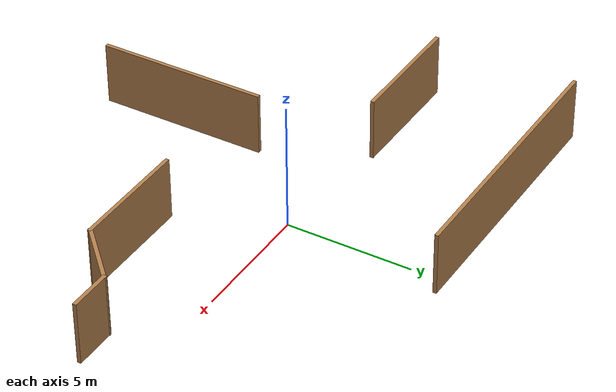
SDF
<?xml version='1.0'?>
<sdf version='1.6'>
  <model name='Adel'>
    <pose frame=''>-0.093957 -1.78062 0 0 -0 0</pose>
    <link name='Wall_0'>
      <collision name='Wall_0_Collision'>
        <geometry>
          <box>
            <size>6.75 0.15 2.5</size>
          </box>
        </geometry>
        <pose frame=''>0 0 1.25 0 -0 0</pose>
      </collision>
      <visual name='Wall_0_Visual'>
        <pose frame=''>0 0 1.25 0 -0 0</pose>
        <geometry>
          <box>
            <size>6.75 0.15 2.5</size>
          </box>
        </geometry>
        <material>
          <script>
            <uri>file://media/materials/scripts/gazebo.material</uri>
            <name>Gazebo/Wood</name>
          </script>
          <ambient>1 1 1 1</ambient>
        </material>
        <meta>
          <layer>0</layer>
        </meta>
      </visual>
      <pose frame=''>-3.17717 -4.79271 0 0 -0 -1.5708</pose>
    </link>
    <link name='Wall_17'>
      <collision name='Wall_17_Collision'>
        <geometry>
          <box>
            <size>5 0.15 2.5</size>
          </box>
        </geometry>
        <pose frame=''>0 0 1.25 0 -0 0</pose>
      </collision>
      <visual name='Wall_17_Visual'>
        <pose frame=''>0 0 1.25 0 -0 0</pose>
        <geometry>
          <box>
            <size>5 0.15 2.5</size>
          </box>
        </geometry>
        <material>
          <script>
            <uri>file://media/materials/scripts/gazebo.material</uri>
            <name>Gazebo/Wood</name>
          </script>
          <ambient>1 1 1 1</ambient>
        </material>
        <meta>
          <layer>0</layer>
        </meta>
      </visual>
      <pose frame=''>-7.45445 2.33014 0 0 -0 0</pose>
    </link>
    <link name='Wall_20'>
      <collision name='Wall_20_Collision'>
        <geometry>
          <box>
            <size>10.75 0.15 2.5</size>
          </box>
        </geometry>
        <pose frame=''>0 0 1.25 0 -0 0</pose>
      </collision>
      <visual name='Wall_20_Visual'>
        <pose frame=''>0 0 1.25 0 -0 0</pose>
        <geometry>
          <box>
            <size>10.75 0.15 2.5</size>
          </box>
        </geometry>
        <material>
          <script>
            <uri>file://media/materials/scripts/gazebo.material</uri>
            <name>Gazebo/Wood</name>
          </script>
          <ambient>1 1 1 1</ambient>
        </material>
        <meta>
          <layer>0</layer>
        </meta>
      </visual>
      <pose frame=''>-4.55535 8.09271 0 0 -0 0</pose>
    </link>
    <link name='Wall_34'>
      <collision name='Wall_34_Collision'>
        <geometry>
          <box>
            <size>1.75 0.15 2.5</size>
          </box>
        </geometry>
        <pose frame=''>0 0 1.25 0 -0 0</pose>
      </collision>
      <visual name='Wall_34_Visual'>
        <pose frame=''>0 0 1.25 0 -0 0</pose>
        <geometry>
          <box>
            <size>1.75 0.15 2.5</size>
          </box>
        </geometry>
        <material>
          <script>
            <uri>file://media/materials/scripts/gazebo.material</uri>
            <name>Gazebo/Wood</name>
          </script>
          <ambient>1 1 1 1</ambient>
        </material>
        <meta>
          <layer>0</layer>
        </meta>
      </visual>
      <pose frame=''>9.07944 -0.287892 0 0 -0 3.14159</pose>
    </link>
    <link name='Wall_36'>
      <collision name='Wall_36_Collision'>
        <geometry>
          <box>
            <size>2.75 0.15 2.5</size>
          </box>
        </geometry>
        <pose frame=''>0 0 1.25 0 -0 0</pose>
      </collision>
      <visual name='Wall_36_Visual'>
        <pose frame=''>0 0 1.25 0 -0 0</pose>
        <geometry>
          <box>
            <size>2.75 0.15 2.5</size>
          </box>
        </geometry>
        <material>
          <script>
            <uri>file://media/materials/scripts/gazebo.material</uri>
            <name>Gazebo/Wood</name>
          </script>
          <ambient>1 1 1 1</ambient>
        </material>
        <meta>
          <layer>0</layer>
        </meta>
      </visual>
      <pose frame=''>7.36021 -1.20713 0 0 -0 -2.35619</pose>
    </link>
    <link name='Wall_38'>
      <collision name='Wall_38_Collision'>
        <geometry>
          <box>
            <size>4.75 0.15 2.5</size>
          </box>
        </geometry>
        <pose frame=''>0 0 1.25 0 -0 0</pose>
      </collision>
      <visual name='Wall_38_Visual'>
        <pose frame=''>0 0 1.25 0 -0 0</pose>
        <geometry>
          <box>
            <size>4.75 0.15 2.5</size>
          </box>
        </geometry>
        <material>
          <script>
            <uri>file://media/materials/scripts/gazebo.material</uri>
            <name>Gazebo/Wood</name>
          </script>
          <ambient>1 1 1 1</ambient>
        </material>
        <meta>
          <layer>0</layer>
        </meta>
      </visual>
      <pose frame=''>4.14097 -2.12637 0 0 -0 3.14159</pose>
    </link>
    <static>1</static>
  </model>
</sdf>
